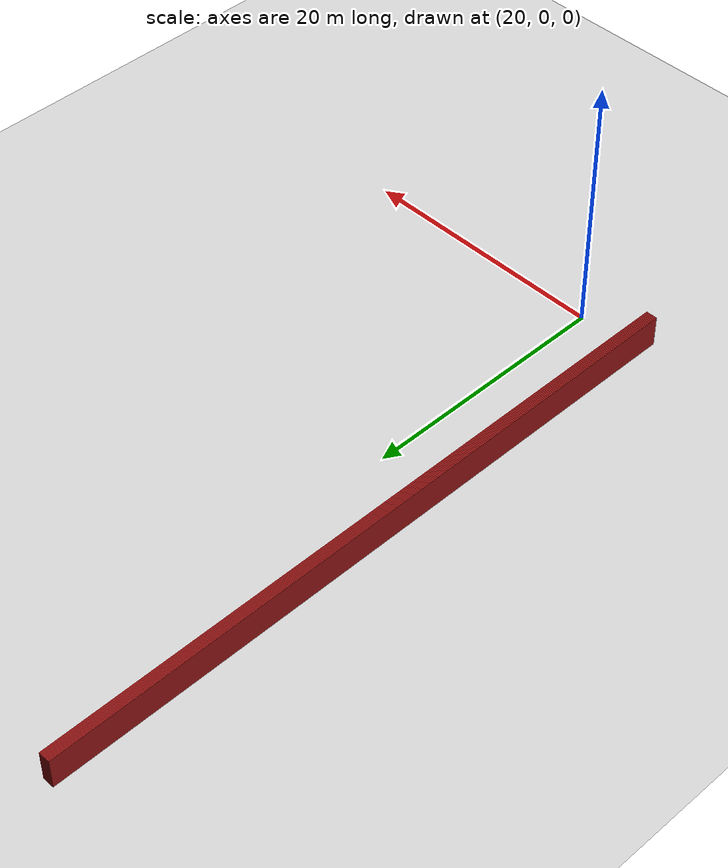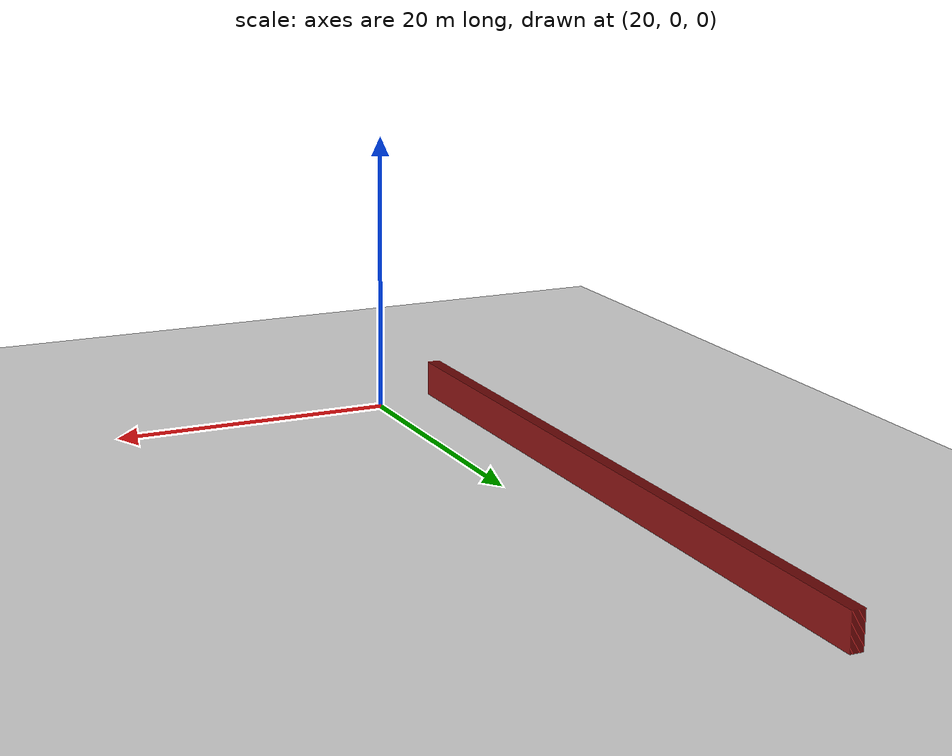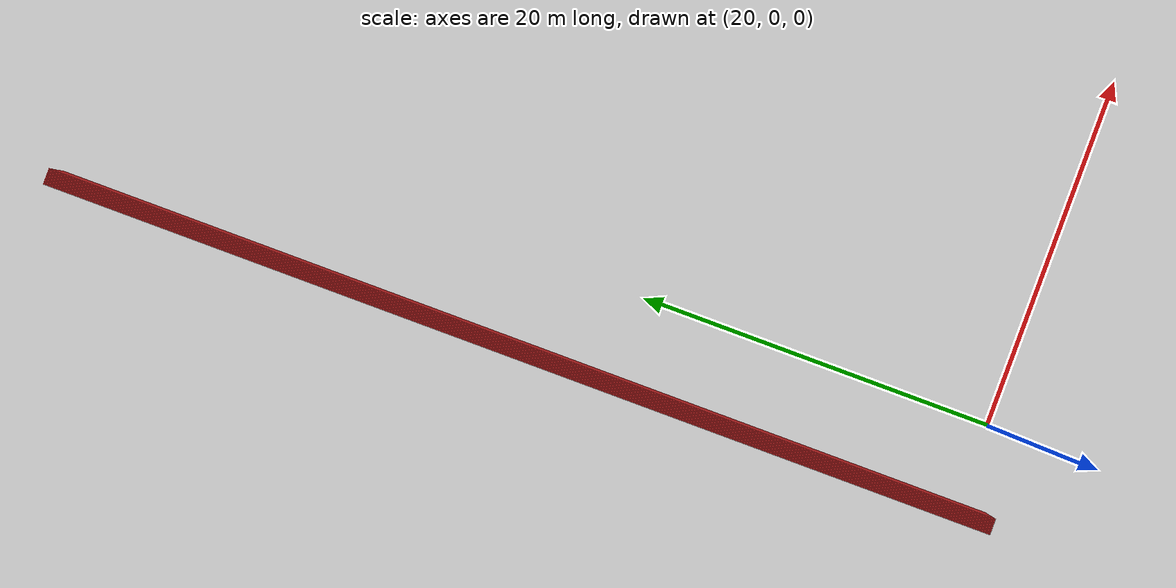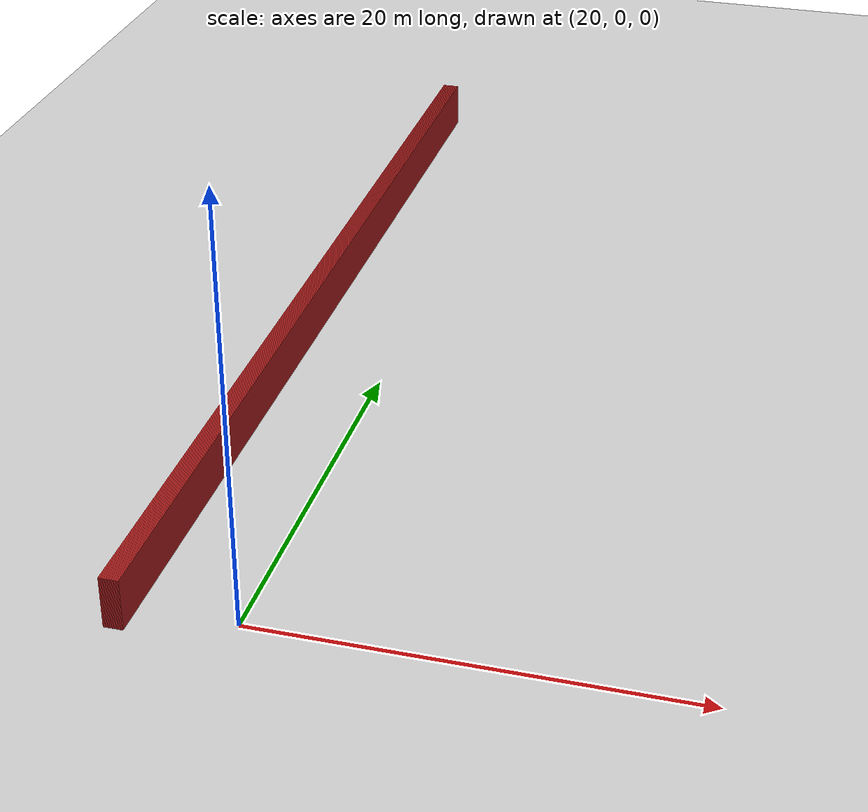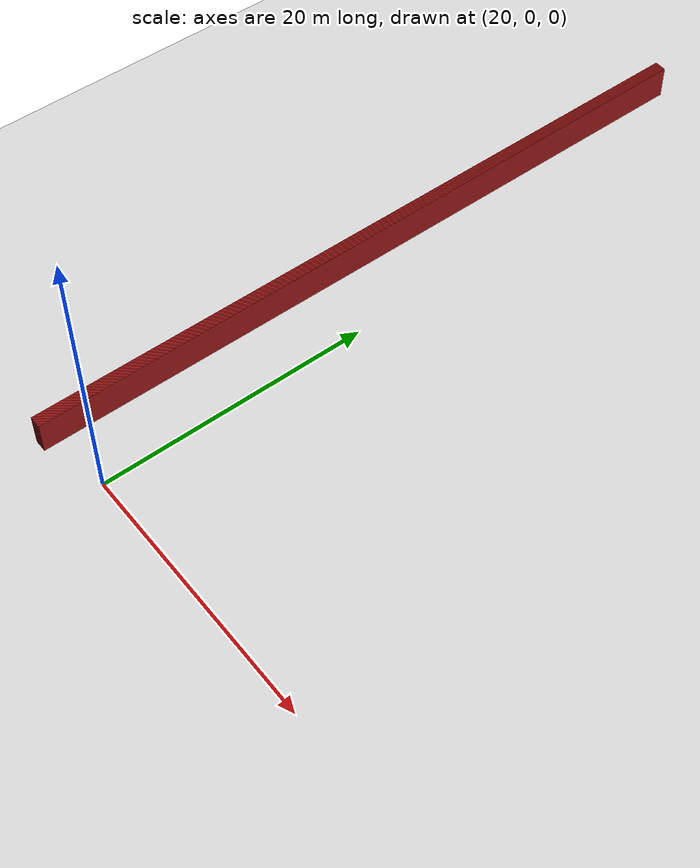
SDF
<sdf version="1.4">
 <world name="1_wall">
  <model name="ground_plane">
   <static>1</static>
   <link name="link">
    <collision name="collision">
     <geometry><plane><normal>0 0 1</normal><size>1000 1000</size></plane></geometry>
     <surface><friction><ode><mu>100</mu><mu2>50</mu2></ode></friction></surface>
    </collision>
    <visual name="visual">
     <cast_shadows>0</cast_shadows>
     <geometry><plane><normal>0 0 1</normal><size>10000 10000</size></plane></geometry>
     <material>
      <script><uri>file://media/materials/scripts/gazebo.material</uri><name>Gazebo/Grey</name></script>
     </material>
    </visual>
    <velocity_decay><linear>0</linear><angular>0</angular></velocity_decay>
   </link>
  </model>
  <model name="Wall_323">
   <static>1</static>
   <link name="Wall_323">
    <collision name="Wall_Collision_323">
     <geometry><box><size>53.65 0.05 2.5</size></box></geometry>
     <pose>0 0 1.25 0 -0 0</pose>
    </collision>
    <visual name="Wall_Visual_323">
     <pose>0 0 1.25 0 -0 0</pose>
     <geometry><box><size>53.65 0.05 2.5</size></box></geometry>
     <material>
      <script><uri>file://media/materials/scripts/gazebo.material</uri><name>Gazebo/Red</name></script>
     </material>
    </visual>
    <velocity_decay><linear>0</linear><angular>0</angular></velocity_decay>
    <pose>14.65 25.3 0 0 0 1.5707963267948966</pose>
   </link>
  </model>
  <model name="Wall_324">
   <static>1</static>
   <link name="Wall_324">
    <collision name="Wall_Collision_324">
     <geometry><box><size>53.65 0.05 2.5</size></box></geometry>
     <pose>0 0 1.25 0 -0 0</pose>
    </collision>
    <visual name="Wall_Visual_324">
     <pose>0 0 1.25 0 -0 0</pose>
     <geometry><box><size>53.65 0.05 2.5</size></box></geometry>
     <material>
      <script><uri>file://media/materials/scripts/gazebo.material</uri><name>Gazebo/Red</name></script>
     </material>
    </visual>
    <velocity_decay><linear>0</linear><angular>0</angular></velocity_decay>
    <pose>14.7 25.3 0 0 0 1.5707963267948966</pose>
   </link>
  </model>
  <model name="Wall_325">
   <static>1</static>
   <link name="Wall_325">
    <collision name="Wall_Collision_325">
     <geometry><box><size>53.65 0.05 2.5</size></box></geometry>
     <pose>0 0 1.25 0 -0 0</pose>
    </collision>
    <visual name="Wall_Visual_325">
     <pose>0 0 1.25 0 -0 0</pose>
     <geometry><box><size>53.65 0.05 2.5</size></box></geometry>
     <material>
      <script><uri>file://media/materials/scripts/gazebo.material</uri><name>Gazebo/Red</name></script>
     </material>
    </visual>
    <velocity_decay><linear>0</linear><angular>0</angular></velocity_decay>
    <pose>14.75 25.3 0 0 0 1.5707963267948966</pose>
   </link>
  </model>
  <model name="Wall_326">
   <static>1</static>
   <link name="Wall_326">
    <collision name="Wall_Collision_326">
     <geometry><box><size>53.65 0.05 2.5</size></box></geometry>
     <pose>0 0 1.25 0 -0 0</pose>
    </collision>
    <visual name="Wall_Visual_326">
     <pose>0 0 1.25 0 -0 0</pose>
     <geometry><box><size>53.65 0.05 2.5</size></box></geometry>
     <material>
      <script><uri>file://media/materials/scripts/gazebo.material</uri><name>Gazebo/Red</name></script>
     </material>
    </visual>
    <velocity_decay><linear>0</linear><angular>0</angular></velocity_decay>
    <pose>14.8 25.3 0 0 0 1.5707963267948966</pose>
   </link>
  </model>
  <model name="Wall_327">
   <static>1</static>
   <link name="Wall_327">
    <collision name="Wall_Collision_327">
     <geometry><box><size>53.65 0.05 2.5</size></box></geometry>
     <pose>0 0 1.25 0 -0 0</pose>
    </collision>
    <visual name="Wall_Visual_327">
     <pose>0 0 1.25 0 -0 0</pose>
     <geometry><box><size>53.65 0.05 2.5</size></box></geometry>
     <material>
      <script><uri>file://media/materials/scripts/gazebo.material</uri><name>Gazebo/Red</name></script>
     </material>
    </visual>
    <velocity_decay><linear>0</linear><angular>0</angular></velocity_decay>
    <pose>14.85 25.3 0 0 0 1.5707963267948966</pose>
   </link>
  </model>
  <model name="Wall_328">
   <static>1</static>
   <link name="Wall_328">
    <collision name="Wall_Collision_328">
     <geometry><box><size>53.65 0.05 2.5</size></box></geometry>
     <pose>0 0 1.25 0 -0 0</pose>
    </collision>
    <visual name="Wall_Visual_328">
     <pose>0 0 1.25 0 -0 0</pose>
     <geometry><box><size>53.65 0.05 2.5</size></box></geometry>
     <material>
      <script><uri>file://media/materials/scripts/gazebo.material</uri><name>Gazebo/Red</name></script>
     </material>
    </visual>
    <velocity_decay><linear>0</linear><angular>0</angular></velocity_decay>
    <pose>14.9 25.3 0 0 0 1.5707963267948966</pose>
   </link>
  </model>
  <model name="Wall_329">
   <static>1</static>
   <link name="Wall_329">
    <collision name="Wall_Collision_329">
     <geometry><box><size>53.65 0.05 2.5</size></box></geometry>
     <pose>0 0 1.25 0 -0 0</pose>
    </collision>
    <visual name="Wall_Visual_329">
     <pose>0 0 1.25 0 -0 0</pose>
     <geometry><box><size>53.65 0.05 2.5</size></box></geometry>
     <material>
      <script><uri>file://media/materials/scripts/gazebo.material</uri><name>Gazebo/Red</name></script>
     </material>
    </visual>
    <velocity_decay><linear>0</linear><angular>0</angular></velocity_decay>
    <pose>14.95 25.3 0 0 0 1.5707963267948966</pose>
   </link>
  </model>
  <model name="Wall_330">
   <static>1</static>
   <link name="Wall_330">
    <collision name="Wall_Collision_330">
     <geometry><box><size>53.65 0.05 2.5</size></box></geometry>
     <pose>0 0 1.25 0 -0 0</pose>
    </collision>
    <visual name="Wall_Visual_330">
     <pose>0 0 1.25 0 -0 0</pose>
     <geometry><box><size>53.65 0.05 2.5</size></box></geometry>
     <material>
      <script><uri>file://media/materials/scripts/gazebo.material</uri><name>Gazebo/Red</name></script>
     </material>
    </visual>
    <velocity_decay><linear>0</linear><angular>0</angular></velocity_decay>
    <pose>15.0 25.3 0 0 0 1.5707963267948966</pose>
   </link>
  </model>
  <model name="Wall_331">
   <static>1</static>
   <link name="Wall_331">
    <collision name="Wall_Collision_331">
     <geometry><box><size>53.65 0.05 2.5</size></box></geometry>
     <pose>0 0 1.25 0 -0 0</pose>
    </collision>
    <visual name="Wall_Visual_331">
     <pose>0 0 1.25 0 -0 0</pose>
     <geometry><box><size>53.65 0.05 2.5</size></box></geometry>
     <material>
      <script><uri>file://media/materials/scripts/gazebo.material</uri><name>Gazebo/Red</name></script>
     </material>
    </visual>
    <velocity_decay><linear>0</linear><angular>0</angular></velocity_decay>
    <pose>15.05 25.3 0 0 0 1.5707963267948966</pose>
   </link>
  </model>
  <model name="Wall_332">
   <static>1</static>
   <link name="Wall_332">
    <collision name="Wall_Collision_332">
     <geometry><box><size>53.65 0.05 2.5</size></box></geometry>
     <pose>0 0 1.25 0 -0 0</pose>
    </collision>
    <visual name="Wall_Visual_332">
     <pose>0 0 1.25 0 -0 0</pose>
     <geometry><box><size>53.65 0.05 2.5</size></box></geometry>
     <material>
      <script><uri>file://media/materials/scripts/gazebo.material</uri><name>Gazebo/Red</name></script>
     </material>
    </visual>
    <velocity_decay><linear>0</linear><angular>0</angular></velocity_decay>
    <pose>15.1 25.3 0 0 0 1.5707963267948966</pose>
   </link>
  </model>
  <model name="Wall_333">
   <static>1</static>
   <link name="Wall_333">
    <collision name="Wall_Collision_333">
     <geometry><box><size>53.65 0.05 2.5</size></box></geometry>
     <pose>0 0 1.25 0 -0 0</pose>
    </collision>
    <visual name="Wall_Visual_333">
     <pose>0 0 1.25 0 -0 0</pose>
     <geometry><box><size>53.65 0.05 2.5</size></box></geometry>
     <material>
      <script><uri>file://media/materials/scripts/gazebo.material</uri><name>Gazebo/Red</name></script>
     </material>
    </visual>
    <velocity_decay><linear>0</linear><angular>0</angular></velocity_decay>
    <pose>15.15 25.3 0 0 0 1.5707963267948966</pose>
   </link>
  </model>
  <model name="Wall_334">
   <static>1</static>
   <link name="Wall_334">
    <collision name="Wall_Collision_334">
     <geometry><box><size>53.65 0.05 2.5</size></box></geometry>
     <pose>0 0 1.25 0 -0 0</pose>
    </collision>
    <visual name="Wall_Visual_334">
     <pose>0 0 1.25 0 -0 0</pose>
     <geometry><box><size>53.65 0.05 2.5</size></box></geometry>
     <material>
      <script><uri>file://media/materials/scripts/gazebo.material</uri><name>Gazebo/Red</name></script>
     </material>
    </visual>
    <velocity_decay><linear>0</linear><angular>0</angular></velocity_decay>
    <pose>15.2 25.3 0 0 0 1.5707963267948966</pose>
   </link>
  </model>
  <model name="Wall_335">
   <static>1</static>
   <link name="Wall_335">
    <collision name="Wall_Collision_335">
     <geometry><box><size>53.65 0.05 2.5</size></box></geometry>
     <pose>0 0 1.25 0 -0 0</pose>
    </collision>
    <visual name="Wall_Visual_335">
     <pose>0 0 1.25 0 -0 0</pose>
     <geometry><box><size>53.65 0.05 2.5</size></box></geometry>
     <material>
      <script><uri>file://media/materials/scripts/gazebo.material</uri><name>Gazebo/Red</name></script>
     </material>
    </visual>
    <velocity_decay><linear>0</linear><angular>0</angular></velocity_decay>
    <pose>15.25 25.3 0 0 0 1.5707963267948966</pose>
   </link>
  </model>
  <model name="Wall_336">
   <static>1</static>
   <link name="Wall_336">
    <collision name="Wall_Collision_336">
     <geometry><box><size>53.65 0.05 2.5</size></box></geometry>
     <pose>0 0 1.25 0 -0 0</pose>
    </collision>
    <visual name="Wall_Visual_336">
     <pose>0 0 1.25 0 -0 0</pose>
     <geometry><box><size>53.65 0.05 2.5</size></box></geometry>
     <material>
      <script><uri>file://media/materials/scripts/gazebo.material</uri><name>Gazebo/Red</name></script>
     </material>
    </visual>
    <velocity_decay><linear>0</linear><angular>0</angular></velocity_decay>
    <pose>15.3 25.3 0 0 0 1.5707963267948966</pose>
   </link>
  </model>
  <model name="Wall_337">
   <static>1</static>
   <link name="Wall_337">
    <collision name="Wall_Collision_337">
     <geometry><box><size>53.65 0.05 2.5</size></box></geometry>
     <pose>0 0 1.25 0 -0 0</pose>
    </collision>
    <visual name="Wall_Visual_337">
     <pose>0 0 1.25 0 -0 0</pose>
     <geometry><box><size>53.65 0.05 2.5</size></box></geometry>
     <material>
      <script><uri>file://media/materials/scripts/gazebo.material</uri><name>Gazebo/Red</name></script>
     </material>
    </visual>
    <velocity_decay><linear>0</linear><angular>0</angular></velocity_decay>
    <pose>15.35 25.3 0 0 0 1.5707963267948966</pose>
   </link>
  </model>
  <model name="Wall_338">
   <static>1</static>
   <link name="Wall_338">
    <collision name="Wall_Collision_338">
     <geometry><box><size>53.65 0.05 2.5</size></box></geometry>
     <pose>0 0 1.25 0 -0 0</pose>
    </collision>
    <visual name="Wall_Visual_338">
     <pose>0 0 1.25 0 -0 0</pose>
     <geometry><box><size>53.65 0.05 2.5</size></box></geometry>
     <material>
      <script><uri>file://media/materials/scripts/gazebo.material</uri><name>Gazebo/Red</name></script>
     </material>
    </visual>
    <velocity_decay><linear>0</linear><angular>0</angular></velocity_decay>
    <pose>15.4 25.3 0 0 0 1.5707963267948966</pose>
   </link>
  </model>
  <model name="Wall_339">
   <static>1</static>
   <link name="Wall_339">
    <collision name="Wall_Collision_339">
     <geometry><box><size>53.65 0.05 2.5</size></box></geometry>
     <pose>0 0 1.25 0 -0 0</pose>
    </collision>
    <visual name="Wall_Visual_339">
     <pose>0 0 1.25 0 -0 0</pose>
     <geometry><box><size>53.65 0.05 2.5</size></box></geometry>
     <material>
      <script><uri>file://media/materials/scripts/gazebo.material</uri><name>Gazebo/Red</name></script>
     </material>
    </visual>
    <velocity_decay><linear>0</linear><angular>0</angular></velocity_decay>
    <pose>15.45 25.3 0 0 0 1.5707963267948966</pose>
   </link>
  </model>
  <model name="Wall_340">
   <static>1</static>
   <link name="Wall_340">
    <collision name="Wall_Collision_340">
     <geometry><box><size>53.65 0.05 2.5</size></box></geometry>
     <pose>0 0 1.25 0 -0 0</pose>
    </collision>
    <visual name="Wall_Visual_340">
     <pose>0 0 1.25 0 -0 0</pose>
     <geometry><box><size>53.65 0.05 2.5</size></box></geometry>
     <material>
      <script><uri>file://media/materials/scripts/gazebo.material</uri><name>Gazebo/Red</name></script>
     </material>
    </visual>
    <velocity_decay><linear>0</linear><angular>0</angular></velocity_decay>
    <pose>15.5 25.3 0 0 0 1.5707963267948966</pose>
   </link>
  </model>
 </world>
</sdf>
